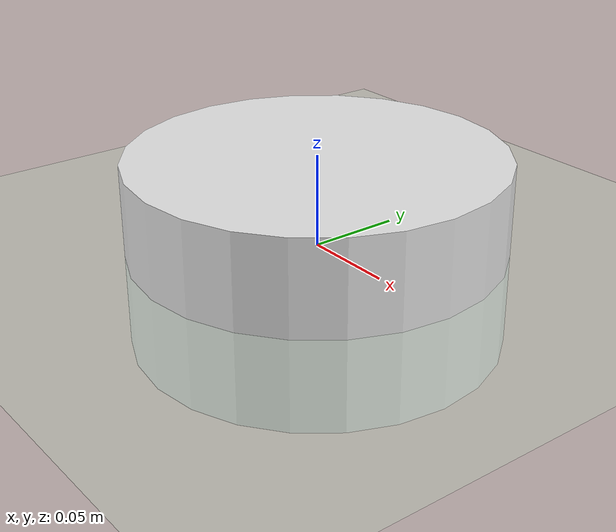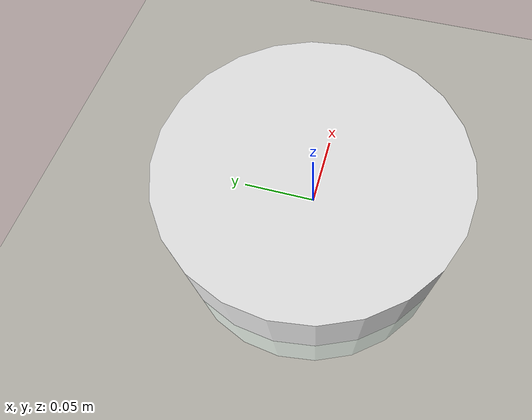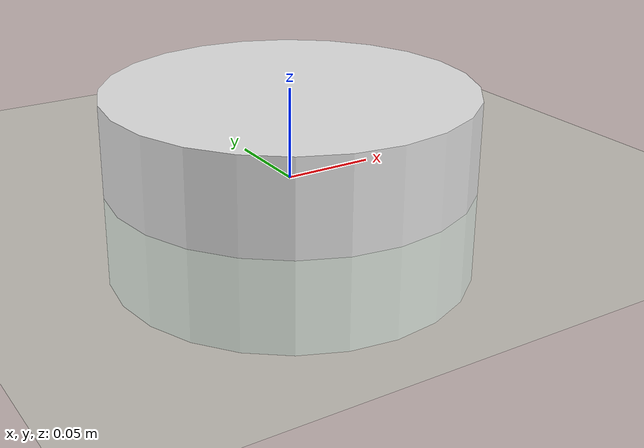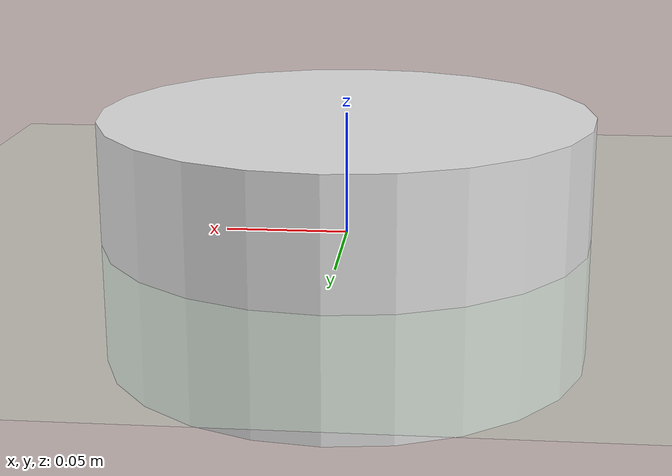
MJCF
<mujoco model="franka_emika_panda_scene">
  <compiler angle="radiant" coordinate="local"/>
  <option timestep="0.002" gravity="0 0 -9.81"/>

  <worldbody>
    <light pos="0 0 1.5" dir="0 0 -1"/>
    <geom name="floor" type="plane" size="1 1 0.1" rgba="0.8 0.9 0.8 1"/>
    <body name="panda_link0" pos="0 0 0">
      <geom name="link0_visual" type="cylinder" size="0.1 0.05" rgba="0.9 0.9 0.9 1"/>
    </body>
  </worldbody>
</mujoco>
